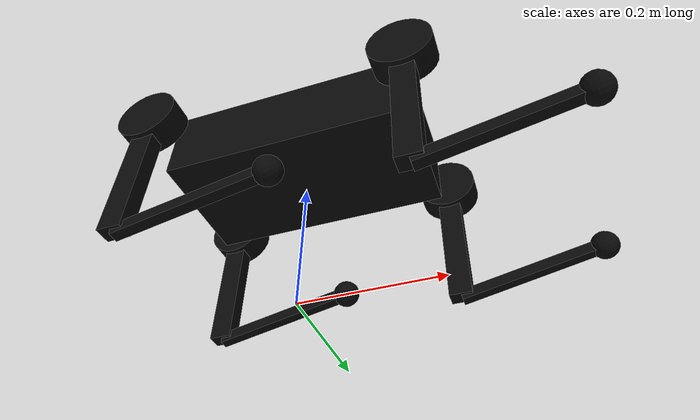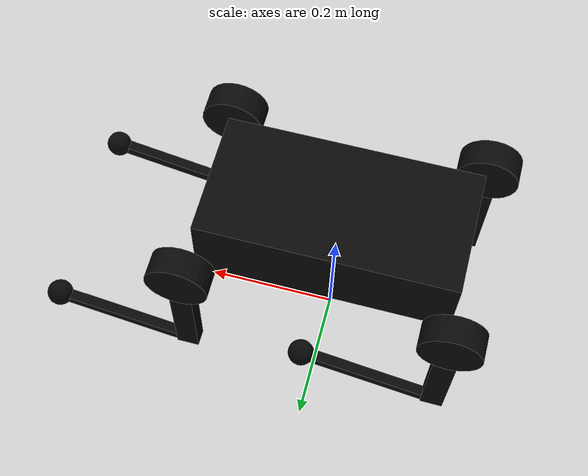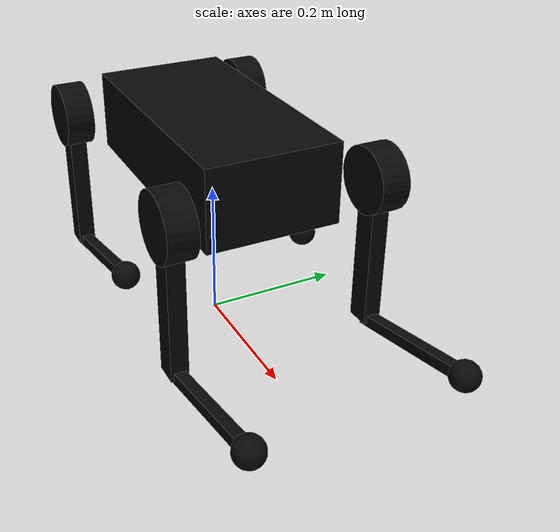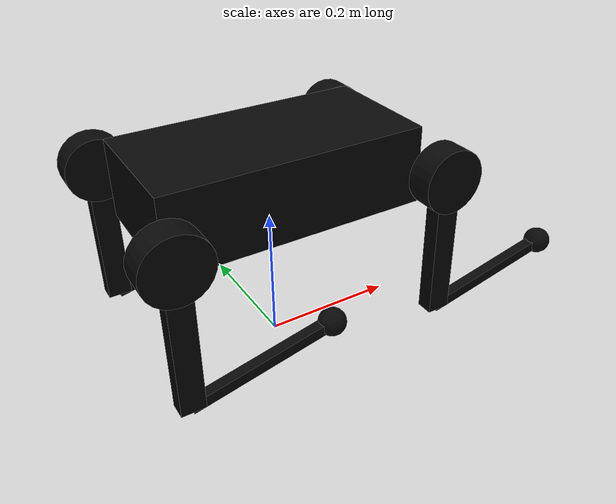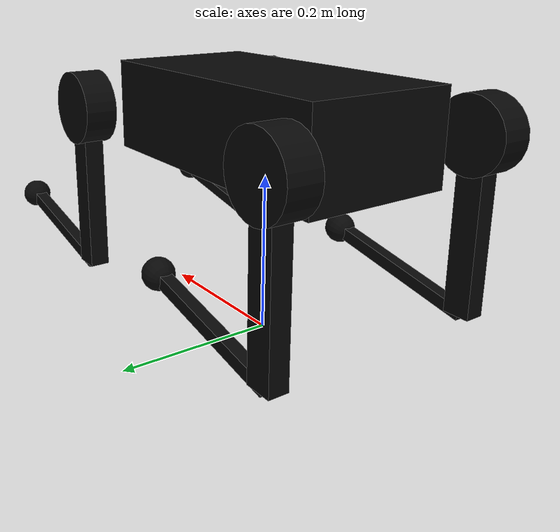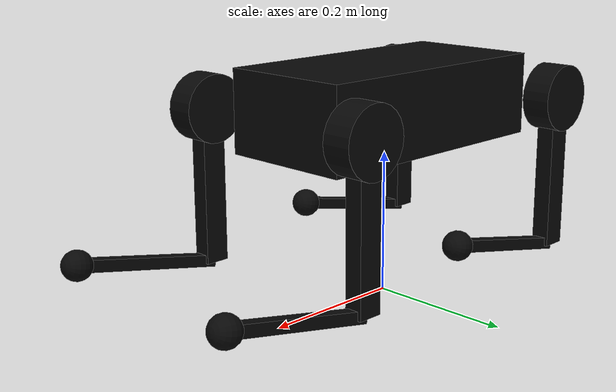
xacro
<?xml version="1.0"?>
<robot name="go2_tinynav" xmlns:xacro="http://ros.org/wiki/xacro">

  <xacro:arg name="kinematic" default="false"/>
  <xacro:property name="kinematic" value="$(arg kinematic)"/>
  <xacro:property name="stand_angle" value="${acos(0.25 / 0.426)}"/>
  <xacro:arg name="robot_name" default="robot1"/>
  <!-- absolute path of ros_control.yaml, passed by spawn.sh:
       GazeboSimROS2ControlPlugin loads it from inside the gz server -->
  <xacro:arg name="ctl_config" default=""/>
  <!-- ${...} expressions read properties, not args -->
  <xacro:property name="robot_name" value="$(arg robot_name)"/>

  <xacro:property name="PI" value="3.1415926535897931"/>
  <xacro:property name="trunk_width" value="0.187"/>
  <xacro:property name="trunk_length" value="0.3762"/>
  <xacro:property name="trunk_height" value="0.114"/>
  <xacro:property name="hip_radius" value="0.046"/>
  <xacro:property name="hip_length" value="0.04"/>
  <xacro:property name="thigh_width" value="0.0245"/>
  <xacro:property name="thigh_height" value="0.034"/>
  <xacro:property name="calf_width" value="0.016"/>
  <xacro:property name="calf_height" value="0.016"/>
  <xacro:property name="foot_radius" value="0.02"/>
  <xacro:property name="thigh_offset" value="0.0955"/>
  <xacro:property name="thigh_length" value="0.213"/>
  <xacro:property name="calf_length" value="0.213"/>
  <xacro:property name="leg_offset_x" value="0.1934"/>
  <xacro:property name="leg_offset_y" value="0.0465"/>
  <xacro:property name="hip_offset" value="0.0955"/>
  <xacro:property name="damping" value="0.01"/>
  <xacro:property name="friction" value="0.2"/>
  <xacro:property name="hip_position_max" value="1.0472"/>
  <xacro:property name="hip_position_min" value="-1.0472"/>
  <xacro:property name="hip_velocity_max" value="30.1"/>
  <xacro:property name="hip_torque_max" value="23.7"/>
  <xacro:property name="thigh_position_max" value="3.4907"/>
  <xacro:property name="thigh_position_min" value="-1.5708"/>
  <xacro:property name="thigh_velocity_max" value="30.1"/>
  <xacro:property name="thigh_torque_max" value="23.7"/>
  <xacro:property name="calf_position_max" value="-0.83776"/>
  <xacro:property name="calf_position_min" value="-2.7227"/>
  <xacro:property name="calf_velocity_max" value="20.06"/>
  <xacro:property name="calf_torque_max" value="35.55"/>
  <xacro:property name="trunk_mass" value="6.921"/>
  <xacro:property name="trunk_com_x" value="0.021112"/>
  <xacro:property name="trunk_com_y" value="0.00"/>
  <xacro:property name="trunk_com_z" value="-0.005366"/>
  <xacro:property name="trunk_ixx" value="0.02448"/>
  <xacro:property name="trunk_ixy" value="0.00012166"/>
  <xacro:property name="trunk_ixz" value="0.0014849"/>
  <xacro:property name="trunk_iyy" value="0.098077"/>
  <xacro:property name="trunk_iyz" value="-3.12E-05"/>
  <xacro:property name="trunk_izz" value="0.107"/>
  <xacro:property name="hip_mass" value="0.678"/>
  <xacro:property name="hip_com_x" value="-0.0054"/>
  <xacro:property name="hip_com_y" value="0.00194"/>
  <xacro:property name="hip_com_z" value="-0.000105"/>
  <xacro:property name="hip_ixx" value="0.00048"/>
  <xacro:property name="hip_ixy" value="-3.01E-06"/>
  <xacro:property name="hip_ixz" value="1.11E-06"/>
  <xacro:property name="hip_iyy" value="0.000884"/>
  <xacro:property name="hip_iyz" value="-1.42E-06"/>
  <xacro:property name="hip_izz" value="0.000596"/>
  <xacro:property name="thigh_mass" value="1.152"/>
  <xacro:property name="thigh_com_x" value="-0.00374"/>
  <xacro:property name="thigh_com_y" value="-0.0223"/>
  <xacro:property name="thigh_com_z" value="-0.0327"/>
  <xacro:property name="thigh_ixx" value="0.00584"/>
  <xacro:property name="thigh_ixy" value="8.72E-05"/>
  <xacro:property name="thigh_ixz" value="-0.000289"/>
  <xacro:property name="thigh_iyy" value="0.0058"/>
  <xacro:property name="thigh_iyz" value="0.000808"/>
  <xacro:property name="thigh_izz" value="0.00103"/>
  <xacro:property name="calf_mass" value="0.154"/>
  <xacro:property name="calf_com_x" value="0.00548"/>
  <xacro:property name="calf_com_y" value="-0.000975"/>
  <xacro:property name="calf_com_z" value="-0.115"/>
  <xacro:property name="calf_ixx" value="0.00108"/>
  <xacro:property name="calf_ixy" value="3.4E-07"/>
  <xacro:property name="calf_ixz" value="1.72E-05"/>
  <xacro:property name="calf_iyy" value="0.0011"/>
  <xacro:property name="calf_iyz" value="8.28E-06"/>
  <xacro:property name="calf_izz" value="3.29E-05"/>
  <xacro:property name="foot_mass" value="0.06"/>

  <!-- near-black with a trace of diffuse so edges stay readable in gz -->
  <material name="black">
    <color rgba="0.03 0.03 0.03 1"/>
  </material>

  <xacro:macro name="leg" params="name mirror front_hind">

    <joint name="${name}_hip_joint" type="${'fixed' if kinematic else 'revolute'}">
      <origin rpy="0 0 0" xyz="${front_hind*leg_offset_x} ${mirror*leg_offset_y} 0"/>
      <parent link="trunk"/>
      <child link="${name}_hip_link"/>
      <axis xyz="1 0 0"/>
      <dynamics damping="${damping}" friction="${friction}"/>
      <xacro:if value="${mirror == 1}">
        <limit effort="${hip_torque_max}" velocity="${hip_velocity_max}" lower="${hip_position_min}" upper="${hip_position_max}"/>
      </xacro:if>
      <xacro:if value="${mirror == -1}">
        <limit effort="${hip_torque_max}" velocity="${hip_velocity_max}" lower="${-hip_position_max}" upper="${-hip_position_min}"/>
      </xacro:if>
    </joint>

    <link name="${name}_hip_link">
      <visual>
        <origin rpy="${PI/2.0} 0 0" xyz="0 ${hip_offset*mirror} 0"/>
        <geometry>
          <cylinder length="${hip_length}" radius="${hip_radius}"/>
        </geometry>
        <material name="black"/>
      </visual>
      <collision>
        <origin rpy="${PI/2.0} 0 0" xyz="0 ${hip_offset*mirror} 0"/>
        <geometry>
          <cylinder length="${hip_length}" radius="${hip_radius}"/>
        </geometry>
      </collision>
      <inertial>
        <origin rpy="0 0 0" xyz="${hip_com_x*front_hind} ${hip_com_y*mirror} ${hip_com_z}"/>
        <mass value="${hip_mass}"/>
        <inertia
            ixx="${hip_ixx}" ixy="${hip_ixy*mirror*front_hind}" ixz="${hip_ixz*front_hind}"
            iyy="${hip_iyy}" iyz="${hip_iyz*mirror}"
            izz="${hip_izz}"/>
      </inertial>
    </link>

    <joint name="${name}_upper_leg_joint" type="${'fixed' if kinematic else 'revolute'}">
      <origin rpy="0 ${stand_angle if kinematic else 0} 0" xyz="0 ${thigh_offset*mirror} 0"/>
      <parent link="${name}_hip_link"/>
      <child link="${name}_upper_leg_link"/>
      <axis xyz="0 1 0"/>
      <dynamics damping="${damping}" friction="${friction}"/>
      <limit effort="${thigh_torque_max}" velocity="${thigh_velocity_max}" lower="${thigh_position_min}" upper="${thigh_position_max}"/>
    </joint>

    <link name="${name}_upper_leg_link">
      <visual>
        <origin rpy="0 ${PI/2.0} 0" xyz="0 0 ${-thigh_length/2.0}"/>
        <geometry>
          <box size="${thigh_length} ${thigh_width} ${thigh_height}"/>
        </geometry>
        <material name="black"/>
      </visual>
      <collision>
        <origin rpy="0 ${PI/2.0} 0" xyz="0 0 ${-thigh_length/2.0}"/>
        <geometry>
          <box size="${thigh_length} ${thigh_width} ${thigh_height}"/>
        </geometry>
      </collision>
      <inertial>
        <origin rpy="0 0 0" xyz="${thigh_com_x} ${thigh_com_y*mirror} ${thigh_com_z}"/>
        <mass value="${thigh_mass}"/>
        <inertia
            ixx="${thigh_ixx}" ixy="${thigh_ixy*mirror}" ixz="${thigh_ixz}"
            iyy="${thigh_iyy}" iyz="${thigh_iyz*mirror}"
            izz="${thigh_izz}"/>
      </inertial>
    </link>

    <joint name="${name}_lower_leg_joint" type="${'fixed' if kinematic else 'revolute'}">
      <origin rpy="0 ${-2*stand_angle if kinematic else 0} 0" xyz="0 0 ${-thigh_length}"/>
      <parent link="${name}_upper_leg_link"/>
      <child link="${name}_lower_leg_link"/>
      <axis xyz="0 1 0"/>
      <dynamics damping="${damping}" friction="${friction}"/>
      <limit effort="${calf_torque_max}" velocity="${calf_velocity_max}" lower="${calf_position_min}" upper="${calf_position_max}"/>
    </joint>

    <link name="${name}_lower_leg_link">
      <visual>
        <origin rpy="0 ${PI/2.0} 0" xyz="0 0 ${-calf_length/2.0}"/>
        <geometry>
          <box size="${calf_length} ${calf_width} ${calf_height}"/>
        </geometry>
        <material name="black"/>
      </visual>
      <collision>
        <origin rpy="0 ${PI/2.0} 0" xyz="0 0 ${-calf_length/2.0}"/>
        <geometry>
          <box size="${calf_length} ${calf_width} ${calf_height}"/>
        </geometry>
      </collision>
      <inertial>
        <origin rpy="0 0 0" xyz="${calf_com_x} ${calf_com_y} ${calf_com_z}"/>
        <mass value="${calf_mass}"/>
        <inertia
            ixx="${calf_ixx}" ixy="${calf_ixy}" ixz="${calf_ixz}"
            iyy="${calf_iyy}" iyz="${calf_iyz}"
            izz="${calf_izz}"/>
      </inertial>
    </link>

    <joint name="${name}_foot_joint" type="fixed">
      <origin rpy="0 0 0" xyz="0 0 ${-(calf_length)}"/>
      <parent link="${name}_lower_leg_link"/>
      <child link="${name}_foot_link"/>
    </joint>

    <link name="${name}_foot_link">
      <visual>
        <origin rpy="0 0 0" xyz="0 0 0"/>
        <geometry>
          <sphere radius="${foot_radius}"/>
        </geometry>
        <material name="black"/>
      </visual>
      <collision>
        <origin rpy="0 0 0" xyz="0 0 0"/>
        <geometry>
          <sphere radius="${foot_radius}"/>
        </geometry>
      </collision>
      <inertial>
        <mass value="${foot_mass}"/>
        <inertia
            ixx="${(2*foot_mass)/5.0*(foot_radius*foot_radius)}" ixy="0.0" ixz="0.0"
            iyy="${(2*foot_mass)/5.0*(foot_radius*foot_radius)}" iyz="0.0"
            izz="${(2*foot_mass)/5.0*(foot_radius*foot_radius)}"/>
      </inertial>
    </link>

  </xacro:macro>

  <link name="base_link">
    <visual>
      <origin rpy="0 0 0" xyz="0 0 0"/>
      <geometry>
        <box size="0.001 0.001 0.001"/>
      </geometry>
    </visual>
  </link>

  <joint name="floating_base" type="fixed">
    <origin rpy="0 0 0" xyz="0 0 0.27"/>
    <parent link="base_link"/>
    <child link="trunk"/>
  </joint>

  <link name="trunk">
    <visual>
      <origin rpy="0 0 0" xyz="0 0 0"/>
      <geometry>
        <box size="${trunk_length} ${trunk_width} ${trunk_height}"/>
      </geometry>
      <material name="black"/>
    </visual>
    <collision>
      <origin rpy="0 0 0" xyz="0 0 0"/>
      <geometry>
        <box size="${trunk_length} ${trunk_width} ${trunk_height}"/>
      </geometry>
    </collision>
    <inertial>
      <origin rpy="0 0 0" xyz="${trunk_com_x} ${trunk_com_y} ${trunk_com_z}"/>
      <mass value="${trunk_mass}"/>
      <inertia
          ixx="${trunk_ixx}" ixy="${trunk_ixy}" ixz="${trunk_ixz}"
          iyy="${trunk_iyy}" iyz="${trunk_iyz}"
          izz="${trunk_izz}"/>
    </inertial>
  </link>

  <xacro:leg name="rf" mirror="-1" front_hind="1"/>
  <xacro:leg name="lf" mirror="1"  front_hind="1"/>
  <xacro:leg name="rh" mirror="-1" front_hind="-1"/>
  <xacro:leg name="lh" mirror="1"  front_hind="-1"/>

  <xacro:property name="head_x" value="0.19"/>
  <xacro:property name="head_z" value="0.09"/>
  <xacro:property name="cam_y" value="0.0255"/>

  <xacro:macro name="sensor_link" params="name x y z yaw:=0">
    <!-- NO visual: a visual near the camera origin would be rendered by the
         camera itself (inside its own bounding mesh) -->
    <link name="${name}_link">
      <inertial>
        <mass value="0.03"/>
        <inertia ixx="1e-5" ixy="0" ixz="0" iyy="1e-5" iyz="0" izz="1e-5"/>
      </inertial>
    </link>
    <joint name="${name}_joint" type="fixed">
      <origin xyz="${x} ${y} ${z}" rpy="0 0 ${yaw}"/>
      <!-- the head rides the trunk: base_link is the ground-level model
           origin and would put the sensors underground -->
      <parent link="trunk"/>
      <child link="${name}_link"/>
    </joint>
  </xacro:macro>

  <xacro:macro name="rc_joint" params="name init:=0.0">
    <joint name="${name}">
      <command_interface name="position"/>
      <state_interface name="position">
        <param name="initial_value">${init}</param>
      </state_interface>
      <state_interface name="velocity"/>
      <state_interface name="effort"/>
    </joint>
  </xacro:macro>

  <xacro:macro name="gz_camera" params="name topic format">
    <gazebo reference="${name}_link">
      <sensor name="${name}" type="camera">
        <pose>0 0 0 0 0 0</pose>
        <camera>
          <horizontal_fov>1.5708</horizontal_fov>
          <image>
            <width>544</width>
            <height>480</height>
            <format>${format}</format>
          </image>
          <clip>
            <near>0.1</near>
            <far>100</far>
          </clip>
        </camera>
        <always_on>1</always_on>
        <update_rate>15</update_rate>
        <visualize>true</visualize>
        <topic>${topic}</topic>
      </sensor>
    </gazebo>
  </xacro:macro>

  <gazebo reference="rear_infra1_link">
    <sensor name="rear_depth" type="depth_camera">
      <pose>0 0 0 0 0 0</pose>
      <camera>
        <horizontal_fov>1.5708</horizontal_fov>
        <image><width>544</width><height>480</height><format>R_FLOAT32</format></image>
        <clip><near>0.1</near><far>15</far></clip>
      </camera>
      <always_on>1</always_on>
      <update_rate>15</update_rate>
      <topic>/sim/rear/depth</topic>
    </sensor>
  </gazebo>

  <xacro:sensor_link name="rear_infra1" x="-${head_x}" y="-${cam_y}" z="${head_z}" yaw="${PI}"/>
  <xacro:gz_camera name="rear_infra1" topic="/camera/rear/infra1/image_rect_raw" format="L8"/>
  <xacro:sensor_link name="rear_infra2" x="-${head_x}" y="${cam_y}" z="${head_z}" yaw="${PI}"/>
  <xacro:gz_camera name="rear_infra2" topic="/camera/rear/infra2/image_rect_raw" format="L8"/>
  <xacro:sensor_link name="rear_color" x="-${head_x}" y="0" z="${head_z}" yaw="${PI}"/>
  <xacro:gz_camera name="rear_color" topic="/camera/rear/color/image_raw" format="RGB_INT8"/>

  <gazebo reference="camera_infra1_link">
    <sensor name="camera_depth" type="depth_camera">
      <pose>0 0 0 0 0 0</pose>
      <camera>
        <horizontal_fov>1.5708</horizontal_fov>
        <image><width>544</width><height>480</height><format>R_FLOAT32</format></image>
        <clip><near>0.1</near><far>15</far></clip>
      </camera>
      <always_on>1</always_on>
      <update_rate>15</update_rate>
      <topic>/sim/depth</topic>
    </sensor>
  </gazebo>

  <!-- stereo pair + RGB, all on the head -->
  <xacro:sensor_link name="camera_infra1" x="${head_x}" y="${cam_y}" z="${head_z}"/>
  <xacro:sensor_link name="camera_infra2" x="${head_x}" y="-${cam_y}" z="${head_z}"/>
  <xacro:sensor_link name="camera_color" x="${head_x}" y="0" z="${head_z}"/>
  <xacro:gz_camera name="camera_infra1"
                   topic="/camera/camera/infra1/image_rect_raw" format="L8"/>
  <xacro:gz_camera name="camera_infra2"
                   topic="/camera/camera/infra2/image_rect_raw" format="L8"/>
  <xacro:gz_camera name="camera_color"
                   topic="/camera/camera/color/image_raw" format="RGB_INT8"/>

  <xacro:sensor_link name="camera_imu" x="0.15" y="0" z="${head_z}"/>
  <gazebo reference="camera_imu_link">
    <sensor name="camera_imu" type="imu">
      <always_on>1</always_on>
      <update_rate>200</update_rate>
      <visualize>true</visualize>
      <topic>/camera/camera/imu</topic>
      <!-- identity translation, same lumping reason as the cameras; the RPY
           stays: it is the camera-convention rotation (body Z = forward) -->
      <pose>0 0 0 1.5708 3.14159 1.5708</pose>
    </sensor>
  </gazebo>

  <xacro:sensor_link name="rear_imu" x="-0.15" y="0" z="${head_z}" yaw="${PI}"/>
  <gazebo reference="rear_imu_link">
    <sensor name="rear_imu" type="imu">
      <always_on>1</always_on>
      <update_rate>200</update_rate>
      <visualize>true</visualize>
      <topic>/camera/rear/imu</topic>
      <!-- identity translation, same lumping reason as the cameras; the RPY
           stays: it is the camera-convention rotation (body Z = forward) -->
      <pose>0 0 0 1.5708 3.14159 1.5708</pose>
    </sensor>
  </gazebo>

  <xacro:unless value="${kinematic}">
  <gazebo>
    <plugin name="gz_ros2_control::GazeboSimROS2ControlPlugin" filename="libign_ros2_control-system.so">
      <ros>
        <namespace>/${robot_name}</namespace>
      </ros>
      <parameters>$(arg ctl_config)</parameters>
    </plugin>
  </gazebo>

  <ros2_control name="${robot_name}_GazeboSystem" type="system">
    <hardware>
      <plugin>gz_ros2_control/GazeboSimSystem</plugin>
    </hardware>
    <xacro:rc_joint name="lf_hip_joint"/>
    <xacro:rc_joint name="lf_upper_leg_joint" init="0.861"/>
    <xacro:rc_joint name="lf_lower_leg_joint" init="-1.883"/>
    <xacro:rc_joint name="rf_hip_joint"/>
    <xacro:rc_joint name="rf_upper_leg_joint" init="0.861"/>
    <xacro:rc_joint name="rf_lower_leg_joint" init="-1.883"/>
    <xacro:rc_joint name="lh_hip_joint"/>
    <xacro:rc_joint name="lh_upper_leg_joint" init="0.944"/>
    <xacro:rc_joint name="lh_lower_leg_joint" init="-1.887"/>
    <xacro:rc_joint name="rh_hip_joint"/>
    <xacro:rc_joint name="rh_upper_leg_joint" init="0.944"/>
    <xacro:rc_joint name="rh_lower_leg_joint" init="-1.887"/>
  </ros2_control>
  </xacro:unless>
  <xacro:if value="${kinematic}">
    <gazebo><static>true</static></gazebo>
  </xacro:if>

  <!-- contact surfaces -->
  <gazebo reference="trunk">
    <mu1>0.2</mu1>
    <mu2>0.2</mu2>
    <kp>10000.0</kp>
    <kd>1.0</kd>
  </gazebo>
  <gazebo reference="lf_hip_link">
    <mu1>0.2</mu1>
    <mu2>0.2</mu2>
  </gazebo>
  <gazebo reference="lf_upper_leg_link">
    <mu1>0.2</mu1>
    <mu2>0.2</mu2>
    <self_collide>1</self_collide>
    <kp>10000.0</kp>
    <kd>1.0</kd>
  </gazebo>
  <gazebo reference="lf_lower_leg_link">
    <mu1>0.2</mu1>
    <mu2>0.2</mu2>
    <self_collide>1</self_collide>
  </gazebo>
  <gazebo reference="lf_foot_link">
    <mu1>0.6</mu1>
    <mu2>0.6</mu2>
    <self_collide>1</self_collide>
    <kp>10000.0</kp>
    <kd>1.0</kd>
  </gazebo>
  <gazebo reference="rf_upper_leg_link">
    <mu1>0.2</mu1>
    <mu2>0.2</mu2>
    <self_collide>1</self_collide>
    <kp>10000.0</kp>
    <kd>1.0</kd>
  </gazebo>
  <gazebo reference="rf_lower_leg_link">
    <mu1>0.2</mu1>
    <mu2>0.2</mu2>
    <self_collide>1</self_collide>
  </gazebo>
  <gazebo reference="rf_foot_link">
    <mu1>0.6</mu1>
    <mu2>0.6</mu2>
    <self_collide>1</self_collide>
    <kp>10000.0</kp>
    <kd>1.0</kd>
  </gazebo>
  <gazebo reference="lh_upper_leg_link">
    <mu1>0.2</mu1>
    <mu2>0.2</mu2>
    <self_collide>1</self_collide>
    <kp>10000.0</kp>
    <kd>1.0</kd>
  </gazebo>
  <gazebo reference="lh_lower_leg_link">
    <mu1>0.2</mu1>
    <mu2>0.2</mu2>
    <self_collide>1</self_collide>
  </gazebo>
  <gazebo reference="lh_foot_link">
    <mu1>0.6</mu1>
    <mu2>0.6</mu2>
    <self_collide>1</self_collide>
    <kp>10000.0</kp>
    <kd>1.0</kd>
  </gazebo>
  <gazebo reference="rh_upper_leg_link">
    <mu1>0.2</mu1>
    <mu2>0.2</mu2>
    <self_collide>1</self_collide>
    <kp>10000.0</kp>
    <kd>1.0</kd>
  </gazebo>
  <gazebo reference="rh_lower_leg_link">
    <mu1>0.2</mu1>
    <mu2>0.2</mu2>
    <self_collide>1</self_collide>
  </gazebo>
  <gazebo reference="rh_foot_link">
    <mu1>0.6</mu1>
    <mu2>0.6</mu2>
    <self_collide>1</self_collide>
    <kp>10000.0</kp>
    <kd>1.0</kd>
  </gazebo>

</robot>
